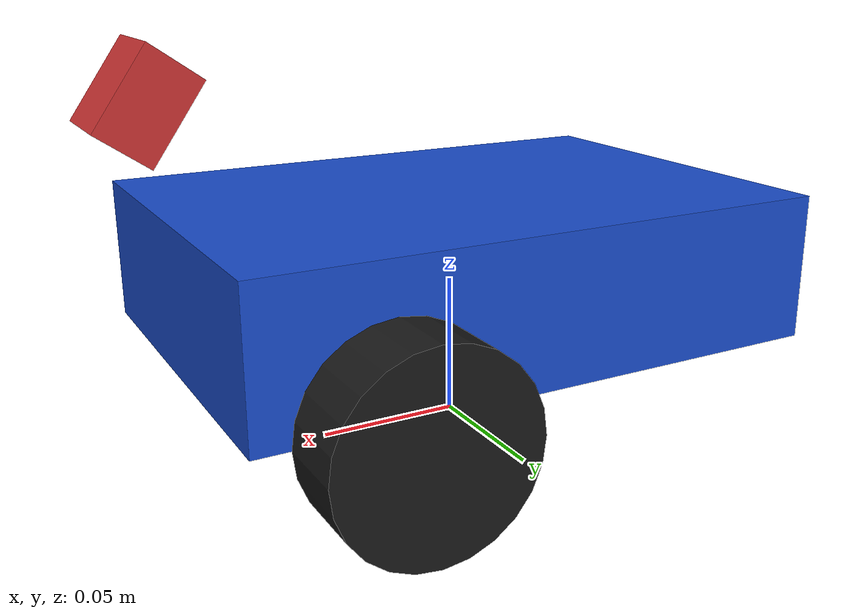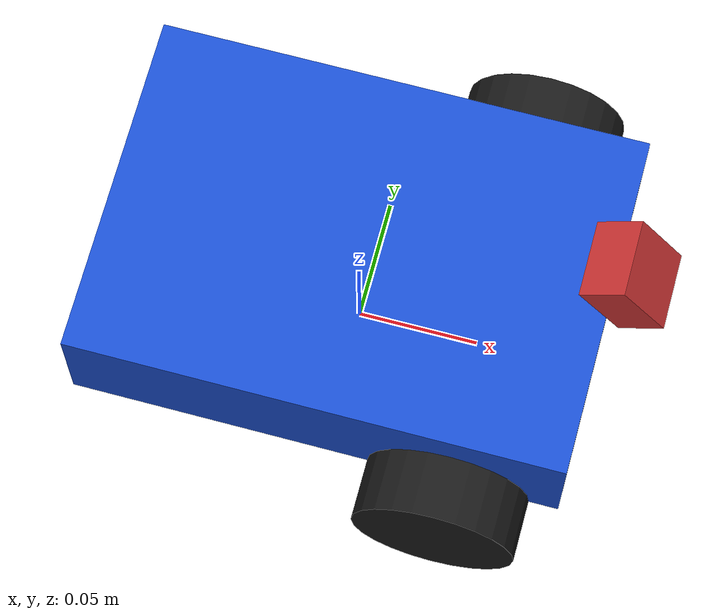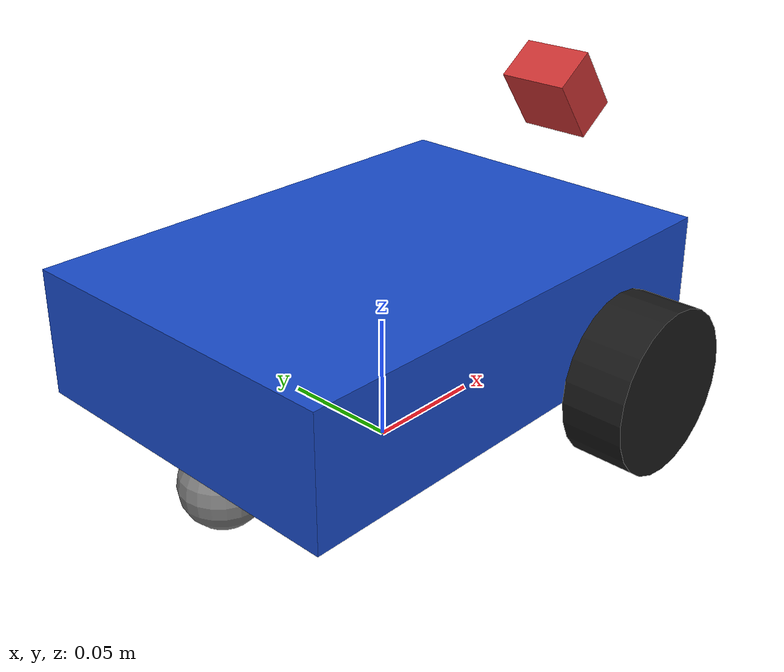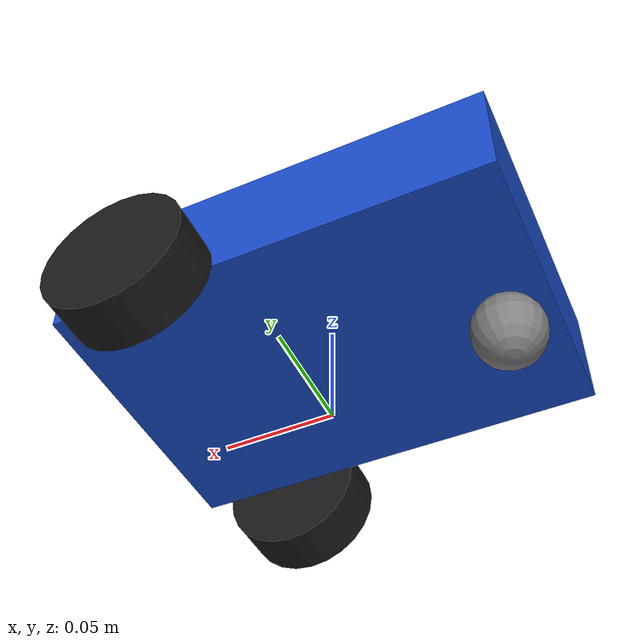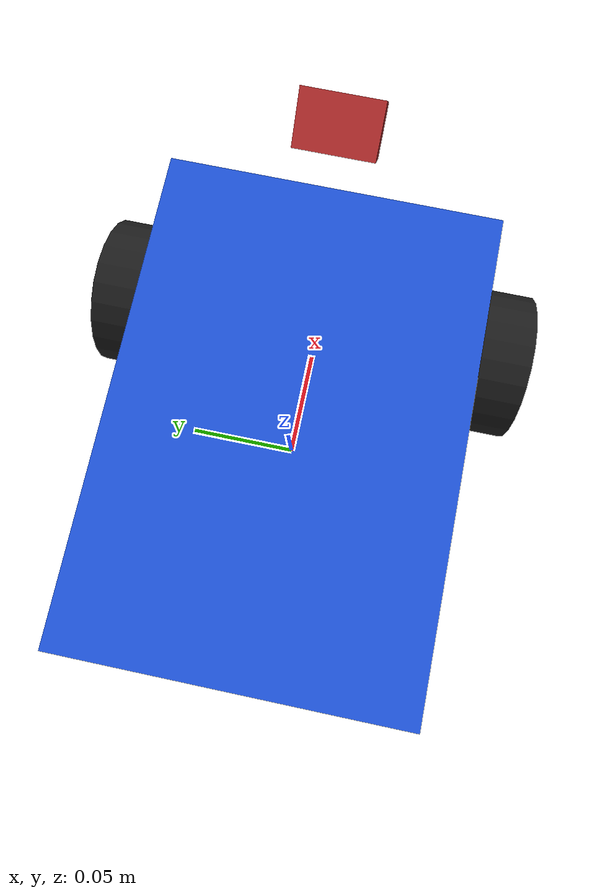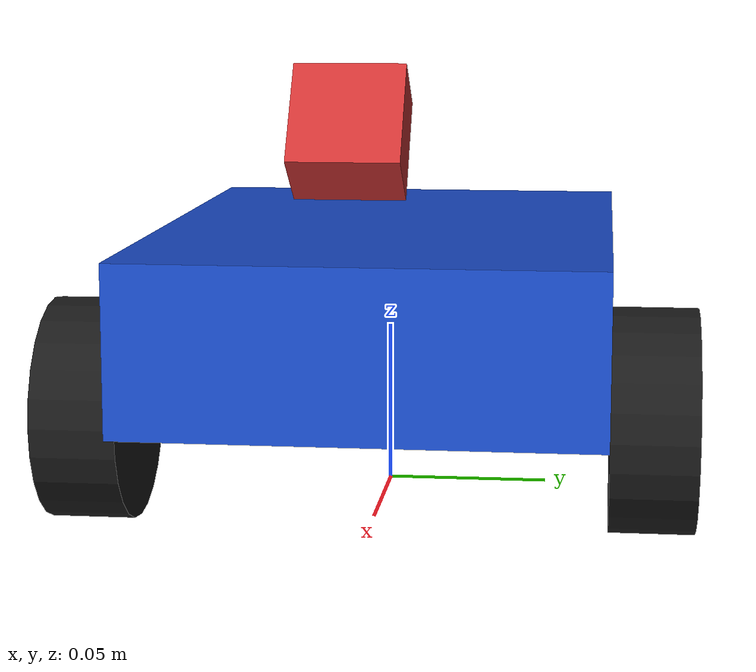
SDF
<?xml version="1.0"?>
<sdf version="1.8">
  <model name="linefollower_bot">
    <!-- Chassis: 20 x 14 x 5 cm box. Bottom sits at z=0.033 (wheel radius). -->
    <link name="chassis">
      <pose>0 0 0.058 0 0 0</pose>
      <inertial>
        <mass>1.0</mass>
        <inertia>
          <ixx>0.00184</ixx>
          <iyy>0.00354</iyy>
          <izz>0.00497</izz>
        </inertia>
      </inertial>
      <visual name="chassis_visual">
        <geometry>
          <box><size>0.20 0.14 0.05</size></box>
        </geometry>
        <material>
          <ambient>0.1 0.3 0.8 1</ambient>
          <diffuse>0.1 0.3 0.8 1</diffuse>
        </material>
      </visual>
      <collision name="chassis_collision">
        <geometry>
          <box><size>0.20 0.14 0.05</size></box>
        </geometry>
      </collision>
    </link>

    <!-- Driven wheels: r=0.033, mounted toward the front -->
    <link name="left_wheel">
      <pose>0.055 0.0825 0.033 -1.5707 0 0</pose>
      <inertial>
        <mass>0.05</mass>
        <inertia>
          <ixx>0.0000162</ixx>
          <iyy>0.0000162</iyy>
          <izz>0.0000272</izz>
        </inertia>
      </inertial>
      <visual name="left_wheel_visual">
        <geometry>
          <cylinder><radius>0.033</radius><length>0.025</length></cylinder>
        </geometry>
        <material>
          <ambient>0.1 0.1 0.1 1</ambient>
          <diffuse>0.1 0.1 0.1 1</diffuse>
        </material>
      </visual>
      <collision name="left_wheel_collision">
        <geometry>
          <cylinder><radius>0.033</radius><length>0.025</length></cylinder>
        </geometry>
      </collision>
    </link>

    <link name="right_wheel">
      <pose>0.055 -0.0825 0.033 -1.5707 0 0</pose>
      <inertial>
        <mass>0.05</mass>
        <inertia>
          <ixx>0.0000162</ixx>
          <iyy>0.0000162</iyy>
          <izz>0.0000272</izz>
        </inertia>
      </inertial>
      <visual name="right_wheel_visual">
        <geometry>
          <cylinder><radius>0.033</radius><length>0.025</length></cylinder>
        </geometry>
        <material>
          <ambient>0.1 0.1 0.1 1</ambient>
          <diffuse>0.1 0.1 0.1 1</diffuse>
        </material>
      </visual>
      <collision name="right_wheel_collision">
        <geometry>
          <cylinder><radius>0.033</radius><length>0.025</length></cylinder>
        </geometry>
      </collision>
    </link>

    <!-- Rear caster: free-rolling sphere on a ball joint -->
    <link name="caster">
      <pose>-0.08 0 0.0165 0 0 0</pose>
      <inertial>
        <mass>0.02</mass>
        <inertia>
          <ixx>0.0000022</ixx>
          <iyy>0.0000022</iyy>
          <izz>0.0000022</izz>
        </inertia>
      </inertial>
      <visual name="caster_visual">
        <geometry>
          <sphere><radius>0.0165</radius></sphere>
        </geometry>
        <material>
          <ambient>0.5 0.5 0.5 1</ambient>
          <diffuse>0.5 0.5 0.5 1</diffuse>
        </material>
      </visual>
      <collision name="caster_collision">
        <geometry>
          <sphere><radius>0.0165</radius></sphere>
        </geometry>
      </collision>
    </link>

    <!-- x=0.105 puts the lens just past the chassis front edge (x=0.10)
         so the bottom of the frame sees ground, not the chassis top. -->
    <link name="camera_link">
      <pose>0.105 0 0.12 0 0.9599 0</pose>
      <inertial>
        <mass>0.02</mass>
        <inertia>
          <ixx>0.000002</ixx>
          <iyy>0.000002</iyy>
          <izz>0.000002</izz>
        </inertia>
      </inertial>
      <visual name="camera_visual">
        <geometry>
          <box><size>0.03 0.03 0.02</size></box>
        </geometry>
        <material>
          <ambient>0.8 0.2 0.2 1</ambient>
          <diffuse>0.8 0.2 0.2 1</diffuse>
        </material>
      </visual>
      <!-- 64x64 is the policy's input format — do not raise it. -->
      <sensor name="front_camera" type="camera">
        <topic>camera</topic>
        <update_rate>30</update_rate>
        <camera>
          <horizontal_fov>1.204</horizontal_fov>
          <image>
            <width>64</width>
            <height>64</height>
            <format>R8G8B8</format>
          </image>
          <clip>
            <near>0.01</near>
            <far>10</far>
          </clip>
        </camera>
      </sensor>
    </link>

    <joint name="left_wheel_joint" type="revolute">
      <parent>chassis</parent>
      <child>left_wheel</child>
      <axis>
        <xyz expressed_in="__model__">0 1 0</xyz>
        <limit>
          <lower>-1.79769e+308</lower>
          <upper>1.79769e+308</upper>
        </limit>
      </axis>
    </joint>

    <joint name="right_wheel_joint" type="revolute">
      <parent>chassis</parent>
      <child>right_wheel</child>
      <axis>
        <xyz expressed_in="__model__">0 1 0</xyz>
        <limit>
          <lower>-1.79769e+308</lower>
          <upper>1.79769e+308</upper>
        </limit>
      </axis>
    </joint>

    <joint name="caster_joint" type="ball">
      <parent>chassis</parent>
      <child>caster</child>
    </joint>

    <joint name="camera_joint" type="fixed">
      <parent>chassis</parent>
      <child>camera_link</child>
    </joint>

    <plugin filename="ignition-gazebo-diff-drive-system"
            name="ignition::gazebo::systems::DiffDrive">
      <left_joint>left_wheel_joint</left_joint>
      <right_joint>right_wheel_joint</right_joint>
      <wheel_separation>0.165</wheel_separation>
      <wheel_radius>0.033</wheel_radius>
      <odom_publish_frequency>20</odom_publish_frequency>
      <topic>/cmd_vel</topic>
    </plugin>
    <plugin filename="ignition-gazebo-odometry-publisher-system"
            name="ignition::gazebo::systems::OdometryPublisher">
      <odom_topic>/model/linefollower_bot/pose_gt</odom_topic>
      <odom_publish_frequency>30</odom_publish_frequency>
      <dimensions>2</dimensions>
    </plugin>
  </model>
</sdf>
